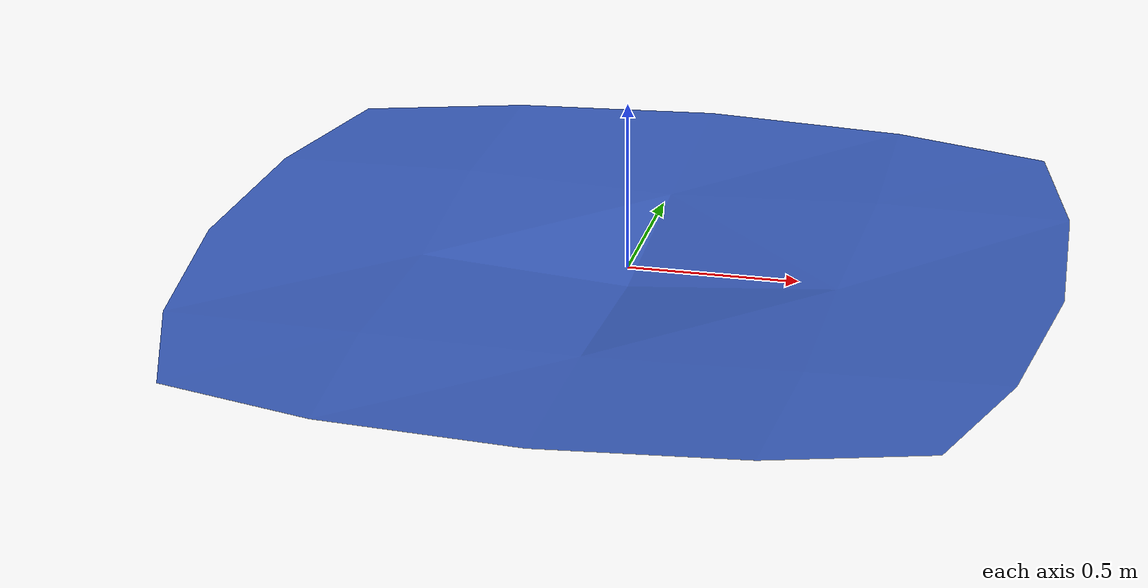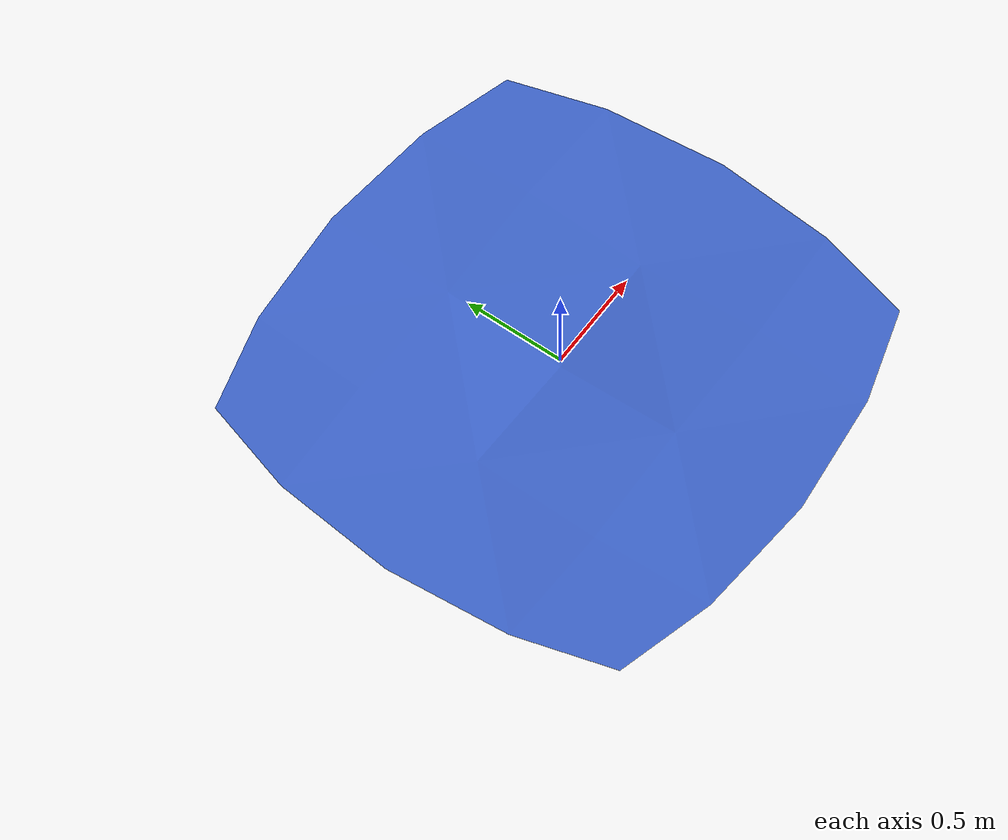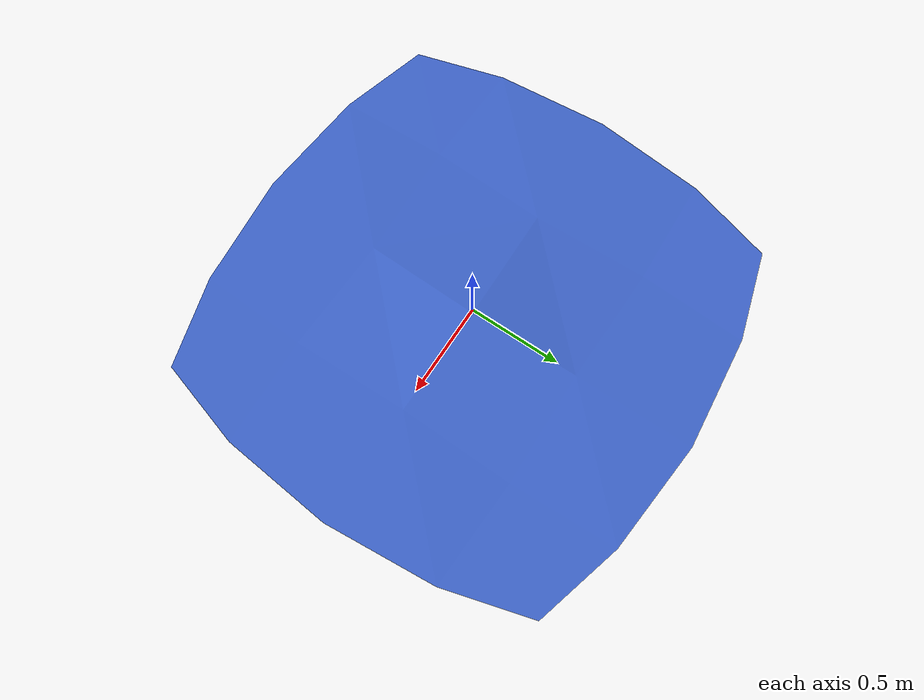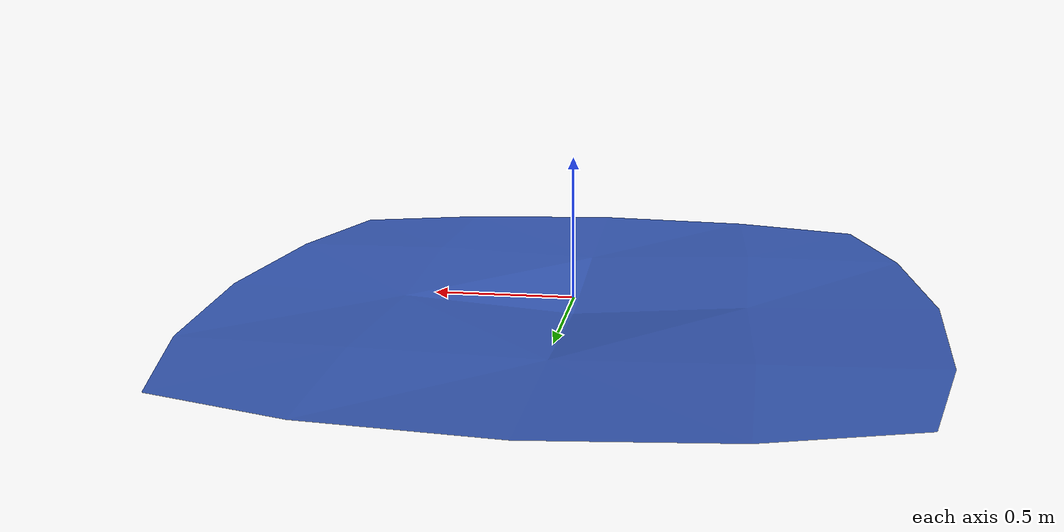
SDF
<?xml version="1.0" ?>
<sdf version="1.6">
  <model name="puddle_medium">
    <static>true</static>
    <link name="link">
      <visual name="visual">
        <geometry>
          <mesh>
            <uri>model://puddle_medium//puddle_medium.dae</uri>
          </mesh>
        </geometry>
      </visual>
    </link>
  </model>
</sdf>
